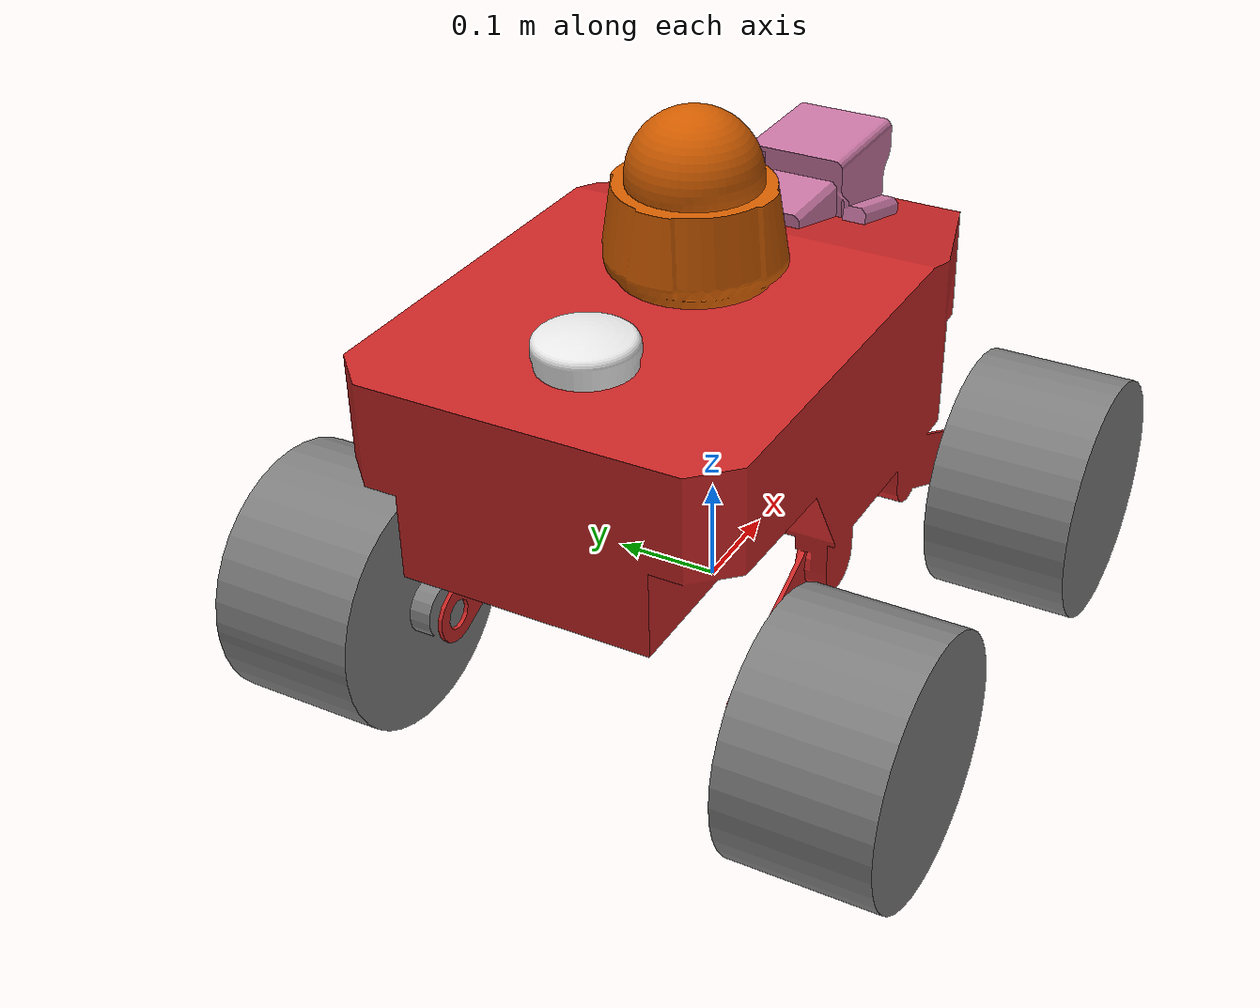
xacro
<?xml version="1.0"?>
<robot name="summit_xl" xmlns:xacro="http://www.ros.org/wiki/xacro">

  <!-- Import all Gazebo-customization elements, including Gazebo colors -->
  <xacro:include filename="$(find summit_xl_description)/urdf/summit_xl_fotonic.gazebo" />

  <!-- Constants for robot dimensions -->
  <xacro:property name="PI" value="3.1415926535897931"/>
  <xacro:property name="wheel_offset_x" value="0.223" />    <!-- x,y,z in base_footprint CS -->
  <xacro:property name="wheel_offset_y" value="0.154" />
  <xacro:property name="wheel_offset_z" value="0.0" />
  <xacro:property name="wheel_joint_damping" value="0.0" />
  <xacro:property name="wheel_joint_friction" value="0.0" />
  <xacro:property name="wheel_joint_effort_limit" value="100.0" />
  <xacro:property name="wheel_joint_velocity_limit" value="100.0" />
  <xacro:property name="wheel_mechanical_reduction" value="1.0" />

  <xacro:property name="ptz_joint_effort_limit" value="100.0" />
  <xacro:property name="ptz_joint_velocity_limit" value="100.0"/>
  <xacro:property name="ptz_joint_friction" value="0.1" />
  <xacro:property name="ptz_joint_damping" value="0.1" />
  <xacro:property name="ptz_mechanical_reduction" value="1.0" />

  <!-- Used for fixing robot to Gazebo 'base_link' -->

  <!-- BASE FOOTPRINT -->
  <!-- base_footprint is a fictitious link(frame) that is on the ground right below base_link origin,
             navigation stack depends on this frame -->
  <link name="base_footprint">
      <visual>
          <origin xyz="0 0 0" rpy="0 0 0" />
          <geometry>
             <box size="0.001 0.001 0.001" />
          </geometry>
      </visual>

      <collision>
          <origin xyz="0 0 0" rpy="0 0 0" />
          <geometry>
            <box size="0.001 0.001 0.001" />
         </geometry>
     </collision>
  </link>

  <joint name="base_footprint_joint" type="fixed">
     <!--NB: While you would think this would make it go up, it is oddly reversed.
      This moves the joint to 0,0,0 where we want it for rviz, etc. -->
     <origin xyz="0 0 0.050" rpy="0 0 0" />
     <parent link="base_footprint"/>
     <child link="base_link" />
  </joint>

  <!-- BASE_LINK (RED) -->
  <link name="base_link">
    <inertial>
      <mass value="25.0" />
      <origin xyz="0 0 0" />
      <inertia  ixx="1.391" ixy="0.004"  ixz="0.0"  iyy="6.853"  iyz="0.0"  izz="6.125" />
    </inertial>
    <visual>
       <origin xyz="0 0 0" rpy="0 0 0" />
       <geometry>
	 <mesh filename="package://summit_xl_description/meshes/xl_fotonic/chassis.dae"/>
       </geometry>
    </visual>
    <collision>
       <origin xyz="0 0 0" rpy="0 0 0 " />
       <geometry>
         <mesh filename="package://summit_xl_description/meshes/xl_fotonic/chassis.dae"/>
	 <box size = "0.750 0.4 0.3"/>
       </geometry>
    </collision>
  </link>
  <gazebo reference="base_link">
    <material>Gazebo/Red</material>
    <gravity>true</gravity>
  </gazebo>

  <!-- BACK LEFT WHEEL (GREY) -->
  <link name="back_left_wheel">
    <inertial>
      <mass value="1.250" />
      <origin xyz="0 0 0" />
      <inertia  ixx="0.0109375" ixy="0.0"  ixz="0.0"  iyy="0.021125"  iyz="0.0"  izz="0.0109375" />
    </inertial>
    <visual>
       <origin xyz="0 0 0" rpy="0 0 0" />
       <geometry>
	 <mesh filename="package://summit_xl_description/meshes/xl_fotonic/wheel.dae" scale="1.0 1.0 1.0"/>
       </geometry>
	<material name="grey">
		<color rgba="0.5 0.5 0.5 1"/>
      	</material>
    </visual>
    <collision>
       <origin xyz="0 0 0" rpy="0 0 0" />
       <geometry>
	 <mesh filename="package://summit_xl_description/meshes/xl_fotonic/wheel.dae" scale="1.0 1.0 1.0"/>
       </geometry>
    </collision>
  </link>

  <joint name="joint_back_left_wheel" type="continuous">
    <parent link="base_link"/>
    <child link="back_left_wheel"/>
    <origin xyz="-${wheel_offset_x} ${wheel_offset_y} 0" rpy="0 0 0" />
    <axis xyz="0 1 0" rpy="0 0 0" />
    <limit effort="${wheel_joint_effort_limit}" velocity="${wheel_joint_velocity_limit}"/>
    <joint_properties damping="${wheel_joint_damping}" friction="{wheel_joint_friction}"/>
  </joint>

  <transmission name="joint_blw_trans">
	 <type>transmission_interface/SimpleTransmission</type>
     <joint name="joint_back_left_wheel" />
     <actuator name="joint_blw_motor">
	    <hardwareInterface>EffortJointInterface</hardwareInterface>
        <mechanicalReduction>${wheel_mechanical_reduction}</mechanicalReduction>
     </actuator>
  </transmission>

  <!-- BACK RIGHT WHEEL (GREY) -->
  <link name="back_right_wheel">
    <inertial>
      <mass value="1.250" />
      <origin xyz="0 0 0" />
      <inertia  ixx="0.0109375" ixy="0.0"  ixz="0.0"  iyy="0.021125"  iyz="0.0"  izz="0.0109375" />
    </inertial>
    <visual>
       <origin xyz="0 0 0" rpy="0 0 0" />
       <geometry>
	 <mesh filename="package://summit_xl_description/meshes/xl_fotonic/wheel.dae" scale="1.0 1.0 1.0"/>
         <!-- cylinder radius="0.125" length="0.1"/ -->
       </geometry>
	<material name="grey">
		<color rgba="0.5 0.5 0.5 1"/>
      	</material>
    </visual>
    <collision>
       <origin xyz="0 0 0" rpy="0 0 0" />
       <geometry>
	 <mesh filename="package://summit_xl_description/meshes/xl_fotonic/wheel.dae" scale="1.0 1.0 1.0"/>
         <!-- cylinder radius="0.125" length="0.1"/ -->
       </geometry>
    </collision>
  </link>

  <joint name="joint_back_right_wheel" type="continuous">
    <parent link="base_link"/>
    <child link="back_right_wheel"/>
    <origin xyz="-${wheel_offset_x} -${wheel_offset_y} 0" rpy="0 0 3.1416" />
    <axis xyz="0 1 0" rpy="0 0 0" />
    <limit effort="${wheel_joint_effort_limit}" velocity="${wheel_joint_velocity_limit}"/>
    <joint_properties damping="${wheel_joint_damping}" friction="{wheel_joint_friction}"/>
  </joint>

  <transmission name="joint_brw_trans">
    <type>transmission_interface/SimpleTransmission</type>
    <joint name="joint_back_right_wheel" />
    <actuator name="joint_brw_motor">
	   <hardwareInterface>EffortJointInterface</hardwareInterface>
       <mechanicalReduction>${wheel_mechanical_reduction}</mechanicalReduction>
    </actuator>
  </transmission>

  <!-- FRONT LEFT WHEEL (GREY) -->
  <link name="front_left_wheel">
    <inertial>
      <mass value="1.250" />
      <origin xyz="0 0 0" />
      <inertia  ixx="0.0109375" ixy="0.0"  ixz="0.0"  iyy="0.021125"  iyz="0.0"  izz="0.0109375" />
    </inertial>
    <visual>
      <origin xyz="0 0 0" rpy="0 0 0" />
      <geometry>
	     <mesh filename="package://summit_xl_description/meshes/xl_fotonic/wheel.dae" scale="1.0 1.0 1.0"/>
         <!-- cylinder radius="0.125" length="0.1"/ -->
      </geometry>
	<material name="grey">
	  <color rgba="0.5 0.5 0.5 1"/>
      </material>
    </visual>
    <collision>
    <origin xyz="0 0 0" rpy="0 0 0" />
    <geometry>
	  <mesh filename="package://summit_xl_description/meshes/xl_fotonic/wheel.dae" scale="1.0 1.0 1.0"/>
         <!-- cylinder radius="0.125" length="0.1"/ -->
    </geometry>
    </collision>
  </link>

  <joint name="joint_front_left_wheel" type="continuous">
    <parent link="base_link"/>
    <child link="front_left_wheel"/>
    <origin xyz="${wheel_offset_x} ${wheel_offset_y} 0" rpy="0 0 0" />
    <axis xyz="0 1 0" rpy="0 0 0" />
    <limit effort="${wheel_joint_effort_limit}" velocity="${wheel_joint_velocity_limit}"/>
    <joint_properties damping="${wheel_joint_damping}" friction="{wheel_joint_friction}"/>
  </joint>

  <transmission name="joint_flw_trans">
	 <type>transmission_interface/SimpleTransmission</type>
     <joint name="joint_front_left_wheel" />
     <actuator name="joint_flw_motor">
	   <hardwareInterface>EffortJointInterface</hardwareInterface>
       <mechanicalReduction>${wheel_mechanical_reduction}</mechanicalReduction>
     </actuator>
  </transmission>

  <!-- FRONT RIGHT WHEEL (GREY) -->
  <link name="front_right_wheel">
    <inertial>
      <mass value="1.250" />
      <origin xyz="0 0 0" />
      <inertia  ixx="0.0109375" ixy="0.0"  ixz="0.0"  iyy="0.021125"  iyz="0.0"  izz="0.0109375" />
    </inertial>
    <visual>
       <origin xyz="0 0 0" rpy="0 0 0" />
       <geometry>
	 <mesh filename="package://summit_xl_description/meshes/xl_fotonic/wheel.dae" scale="1.0 1.0 1.0"/>
       </geometry>
	<material name="grey">
		<color rgba="0.5 0.5 0.5 1"/>
      	</material>
    </visual>
    <collision>
       <origin xyz="0 0 0" rpy="0 0 0" />
       <geometry>
	 <mesh filename="package://summit_xl_description/meshes/xl_fotonic/wheel.dae" scale="1.0 1.0 1.0"/>
       </geometry>
    </collision>
  </link>

  <joint name="joint_front_right_wheel" type="continuous">
    <parent link="base_link"/>
    <child link="front_right_wheel"/>
    <origin xyz="${wheel_offset_x} -${wheel_offset_y} 0" rpy="0 0 3.1416" />
    <axis xyz="0 1 0" rpy="0 0 0" />
    <limit effort="${wheel_joint_effort_limit}" velocity="${wheel_joint_velocity_limit}"/>
    <joint_properties damping="${wheel_joint_damping}" friction="{wheel_joint_friction}"/>
  </joint>

  <transmission name="joint_frw_trans">
	 <type>transmission_interface/SimpleTransmission</type>
     <joint name="joint_front_right_wheel" />
     <actuator name="joint_frw_motor">
	   <hardwareInterface>EffortJointInterface</hardwareInterface>
       <mechanicalReduction>${wheel_mechanical_reduction}</mechanicalReduction>
     </actuator>
  </transmission>

  <!-- FOTONIC 3D TOF LASER SENSOR -->
  <joint name="fotonic_laser_joint" type="fixed">
     <axis xyz="0 0 1" />
     <origin xyz="0.0 0.0 0.0"/>  <!-- geometric origin of the part -->
     <parent link="base_link"/>
     <child link="kinect_link"/>
  </joint>

  <link name="kinect_link">
    <inertial>
      <mass value="0.0001" />
      <origin xyz="0 0 0" />
      <inertia ixx="0.0001" ixy="0.0" ixz="0.0"
               iyy="0.0001" iyz="0.0"
               izz="0.0001" />
    </inertial>
    <visual>
      <origin xyz="0 0 0" rpy="0 0 0"/>
      <geometry>
	<mesh filename= "package://summit_xl_description/meshes/xl_fotonic/fotonic.dae" scale="1.0 1.0 1.0"/>
      </geometry>
    </visual>
    <collision>
      <origin xyz="0 0 0" rpy="0 0 0"/>
      <geometry>
        <mesh filename= "package://summit_xl_description/meshes/xl_fotonic/fotonic.dae" scale="1.0 1.0 1.0"/>
      </geometry>
    </collision>
  </link>

  <joint name="kinect_depth_joint" type="fixed">
    <origin xyz="0.275 0 0.260" rpy="0 0 0" />
    <parent link="kinect_link" />
    <child link="kinect_depth_frame" />
  </joint>

  <link name="kinect_depth_frame">
    <inertial>
      <mass value="0.0001" />
      <origin xyz="0 0 0" />
      <inertia ixx="0.0001" ixy="0.0" ixz="0.0"
               iyy="0.0001" iyz="0.0"
               izz="0.0001" />
    </inertial>
  </link>

  <joint name="depth_optical_joint" type="fixed">
    <origin xyz="0 0 0" rpy="-1.5708 0 -1.5708" />
    <parent link="kinect_depth_frame" />
    <child link="kinect_depth_optical_frame" />
  </joint>

  <link name="kinect_depth_optical_frame">
    <inertial>
      <mass value="0.0001" />
      <origin xyz="0 0 0" />
      <inertia ixx="0.0001" ixy="0.0" ixz="0.0"
               iyy="0.0001" iyz="0.0"
               izz="0.0001" />
    </inertial>
  </link>

  <!-- ANTENNA GPS -->
  <joint name="gps_antenna_joint" type="fixed">
     <axis xyz="0 1 0" />
     <origin xyz="0.0 0.0 0.0"/>
     <parent link="base_link"/>
     <!-- child link="gps_antenna_link"/ -->
     <child link="gps_link"/>
  </joint>
  <link name="gps_link">
     <inertial>
       <mass value="0.001" />
       <origin xyz="0 0 0" rpy="0 0 0" />
       <inertia ixx="0.0001" ixy="0" ixz="0" iyy="0.000001" iyz="0" izz="0.0001" />
    </inertial>
    <visual>
      <origin xyz="0 0 0" rpy="0 0 0"/>
      <geometry>
	<mesh filename= "package://summit_xl_description/meshes/xl_fotonic/antenna_3GO16.dae" scale="1.0 1.0 1.0"/>
      </geometry>
    </visual>
    <collision>
      <origin xyz="0 0 0" rpy="0 0 0"/>
      <geometry>
        <mesh filename= "package://summit_xl_description/meshes/xl_fotonic/antenna_3GO16.dae" scale="1.0 1.0 1.0"/>
      </geometry>
    </collision>
  </link>

  <!-- HOKUYO SENSOR -->
  <joint name="hokuyo_laser_joint" type="fixed">
     <axis xyz="0 1 0" />
     <origin xyz="0.29 0 0.1"/>
     <parent link="base_link"/>
     <child link="hokuyo_laser_link"/>
  </joint>
  <link name="hokuyo_laser_link" type="laser">
     <inertial>
       <mass value="0.001" />
       <origin xyz="0 0 0" rpy="0 0 0" />
       <inertia ixx="0.0001" ixy="0" ixz="0" iyy="0.000001" iyz="0" izz="0.0001" />
    </inertial>
  </link>

  <!-- This adds a visual box to allow us to see the Hokuyo in rviz/gazebo -->
  <joint name="hokuyo_laser_box_joint" type="fixed">
    <origin xyz="0 0 0" rpy="0 0 0" />
    <parent link="hokuyo_laser_link" />
    <child link="hokuyo_laser_box_link"/>
  </joint>
  <link name="hokuyo_laser_box_link">
    <inertial>
      <mass value="0.01" />
      <origin xyz="0 0 0" />
      <inertia ixx="0.001"  ixy="0.0"  ixz="0.0"
               iyy="0.001"  iyz="0.0"
               izz="0.001" />
    </inertial>
    <visual>
      <origin xyz="0 0 0" rpy="0 0 0"/>
      <geometry>
	    <!-- mesh filename= "package://pr2_description/meshes/tilting_laser_v0/hok_tilt.stl" scale="0.5 0.5 0.5"/ -->
	    <mesh filename= "package://summit_xl_description/meshes/hokuyo-utm30-lx.dae" scale="1.0 1.0 1.0"/>
      </geometry>
    </visual>
    <collision>
      <origin xyz="0 0 0" rpy="0 0 0"/>
      <geometry>
        <box size="0.05 0.05 0.1" />
      </geometry>
    </collision>
  </link>

  <gazebo reference="hokuyo_laser_box_link">
    <material>Gazebo/Grey</material>
    <gravity>true</gravity>
  </gazebo>

  <!-- IMU SENSOR -->
  <joint name="imu_joint" type="fixed">
      <axis xyz="1 0 0"/>
      <origin xyz="0 0 0.2825"/>
      <parent link="base_link"/>
      <child link="imu_link"/>
  </joint>
  <link name="imu_link">
      <inertial>
        <mass value="0.001"/>
        <origin rpy="0 0 0" xyz="0 0 0"/>
        <inertia ixx="0.0001" ixy="0" ixz="0" iyy="0.000001" iyz="0" izz="0.0001"/>
      </inertial>
      <visual>
        <origin rpy="0 0 0" xyz="0 0 0"/>
        <geometry>
          <box size="0.001 0.001 0.001"/>
        </geometry>
      </visual>
      <collision>
        <origin rpy="0 0 0" xyz="0 0 0"/>
        <geometry>
          <box size=".001 .001 .001"/>
        </geometry>
      </collision>
  </link>

  <!-- AXIS CAMERA PTZ -->
  <joint name="camera_joint" type="fixed">
     <axis xyz="0 1 0" />
     <origin xyz="0.0 0.0 0.0"/>
     <parent link="base_link"/>
     <child link="camera_link"/>
  </joint>
  <link name="camera_link" type="camera">
     <inertial>
       <mass value="0.001" />
       <origin xyz="0 0 0" rpy="0 0 0" />
       <inertia ixx="0.0001" ixy="0" ixz="0" iyy="0.000001" iyz="0" izz="0.0001" />
    </inertial>
    <visual>
      <origin xyz="0 0 0" rpy="0 0 0"/>
      <geometry>
	<mesh filename= "package://summit_xl_description/meshes/xl_fotonic/axis_p5512.dae" scale="1.0 1.0 1.0"/>
      </geometry>
    </visual>
    <collision>
      <origin xyz="0 0 0" rpy="0 0 0"/>
      <geometry>
        <mesh filename= "package://summit_xl_description/meshes/xl_fotonic/axis_p5512.dae" scale="1.0 1.0 1.0"/>
      </geometry>
    </collision>
  </link>

    <!-- AXIS PTZ CAMERA WITH PAN AND TILT -->
  <link name="camera_base_link">
     <inertial>
       <mass value="0.1" />
       <origin xyz="0 0 0" rpy="0 0 0" />
       <inertia ixx="0.1" ixy="0" ixz="0" iyy="0.1" iyz="0" izz="0.1" />
    </inertial>
  </link>

  <joint name="joint_camera" type="fixed">
     <axis xyz="0 1 0" />
     <!--origin xyz="0.180 0.0 0.270"/-->
     <origin xyz="-0.025 0.0 0.440"/>
     <parent link="base_link"/>
     <child link="camera_base_link"/>
  </joint>

  <link name="camera_pan_link">
     <inertial>
       <mass value="0.1" />
       <origin xyz="0 0 0" rpy="0 0 0" />
       <inertia ixx="0.1" ixy="0" ixz="0" iyy="0.1" iyz="0" izz="0.1" />
    </inertial>
  </link>

  <joint name="joint_camera_pan" type="continuous">
     <axis xyz="0 0 1" />
     <origin xyz="0.0 0.0 0.0"/>
     <parent link="camera_base_link"/>
     <child link="camera_pan_link"/>
     <limit effort="${ptz_joint_effort_limit}" velocity="${ptz_joint_velocity_limit}" lower="-3.1416" upper="3.1416"/>
     <joint_properties damping="${ptz_joint_damping}" friction="{ptz_joint_friction}"/>
  </joint>

  <transmission name="joint_pan_trans">
	 <type>transmission_interface/SimpleTransmission</type>
     <joint name="joint_camera_pan" />
     <actuator name="pan_motor">
	   <hardwareInterface>EffortJointInterface</hardwareInterface>
       <mechanicalReduction>${ptz_mechanical_reduction}</mechanicalReduction>
     </actuator>
  </transmission>

  <link name="camera_tilt_link">
     <inertial>
       <mass value="0.1" />
       <!-- origin xyz="0 0 0" rpy="0 0 0" / -->
       <origin xyz="0 0 0.3" rpy="0 0 0" />
       <inertia ixx="0.1" ixy="0" ixz="0" iyy="0.1" iyz="0" izz="0.1" />
    </inertial>
  </link>

  <joint name="joint_camera_tilt" type="continuous">
     <axis xyz="0 1 0" />
     <origin xyz="0.0 0.0 0.0"/>
     <parent link="camera_pan_link"/>
     <child link="camera_tilt_link"/>
     <limit effort="${ptz_joint_effort_limit}" velocity="${ptz_joint_velocity_limit}" lower="-1.5708" upper="1.5708"/>
     <joint_properties damping="${ptz_joint_damping}" friction="{ptz_joint_friction}"/>
  </joint>

  <transmission name="joint_tilt_trans">
	 <type>transmission_interface/SimpleTransmission</type>
     <joint name="joint_camera_tilt" />
     <actuator name="tilt_motor">
	   <hardwareInterface>EffortJointInterface</hardwareInterface>
       <mechanicalReduction>${ptz_mechanical_reduction}</mechanicalReduction>
     </actuator>
  </transmission>

</robot>
